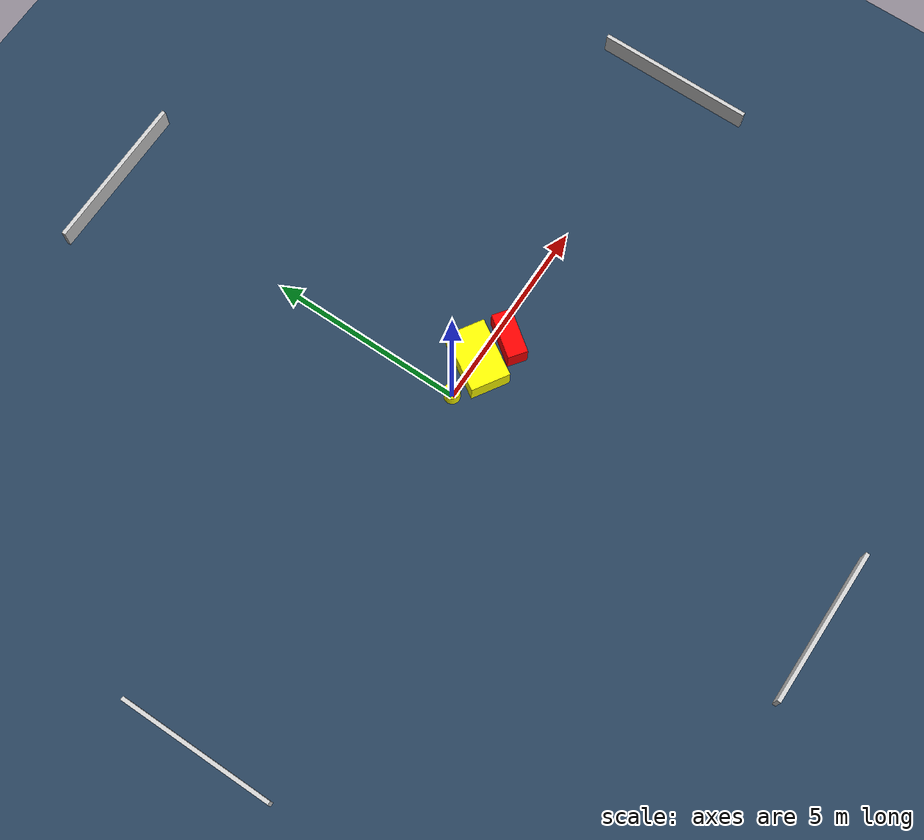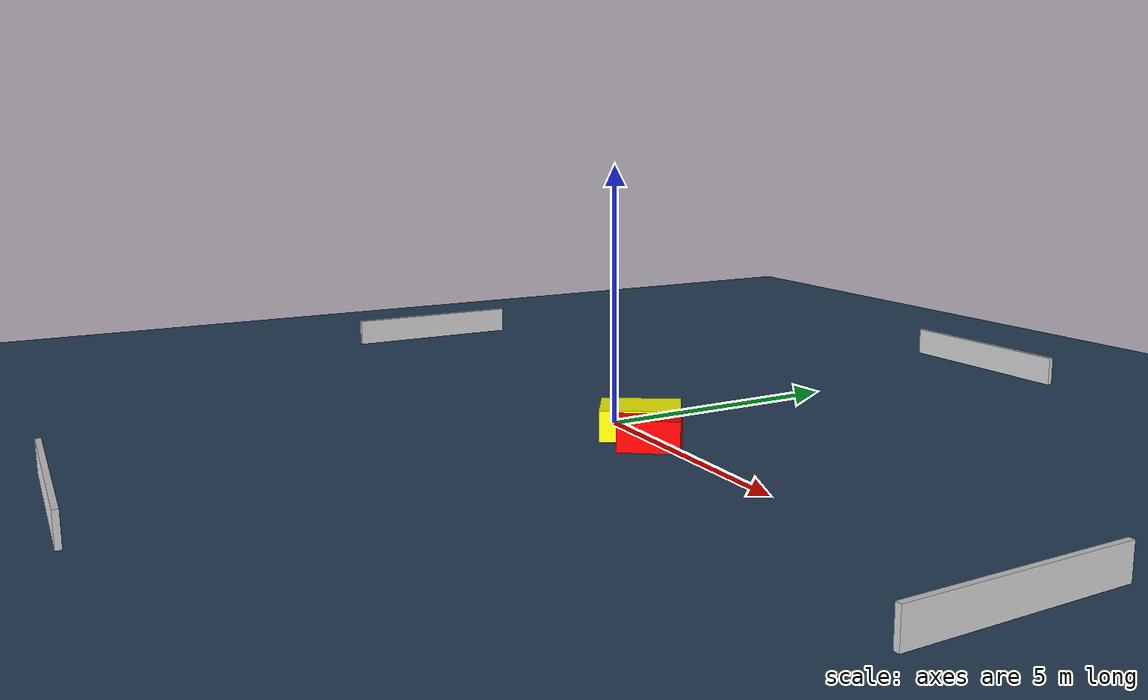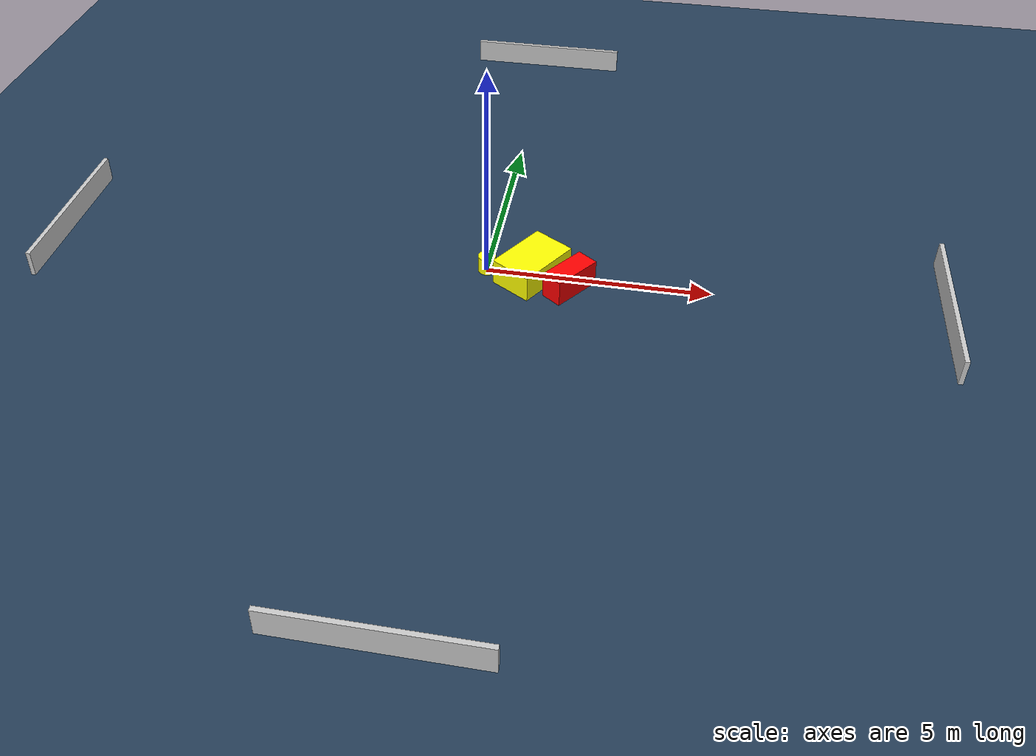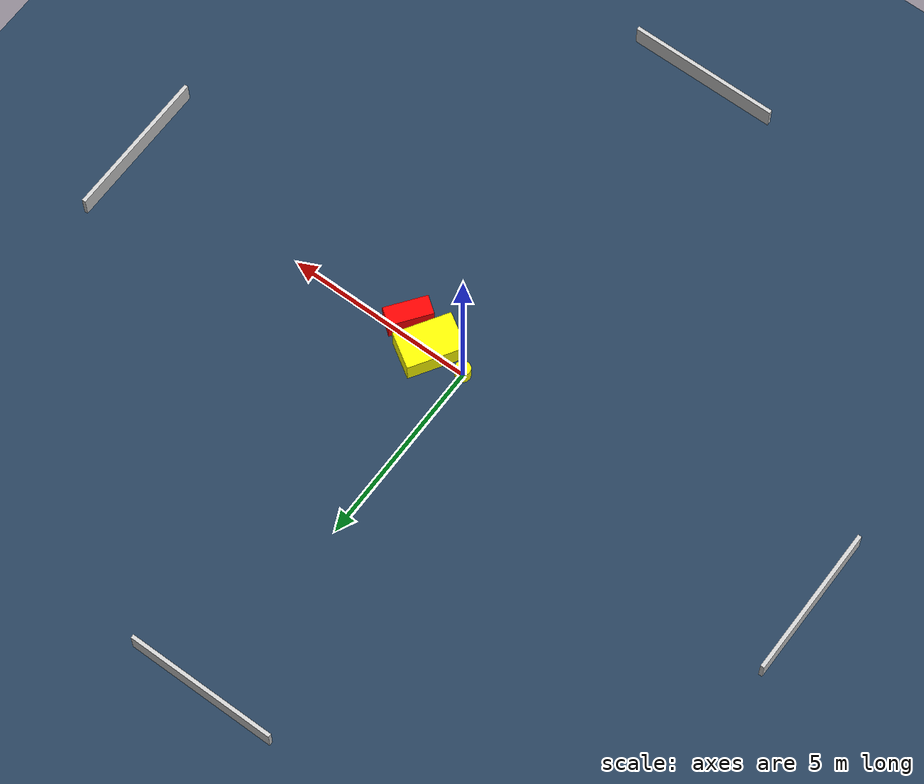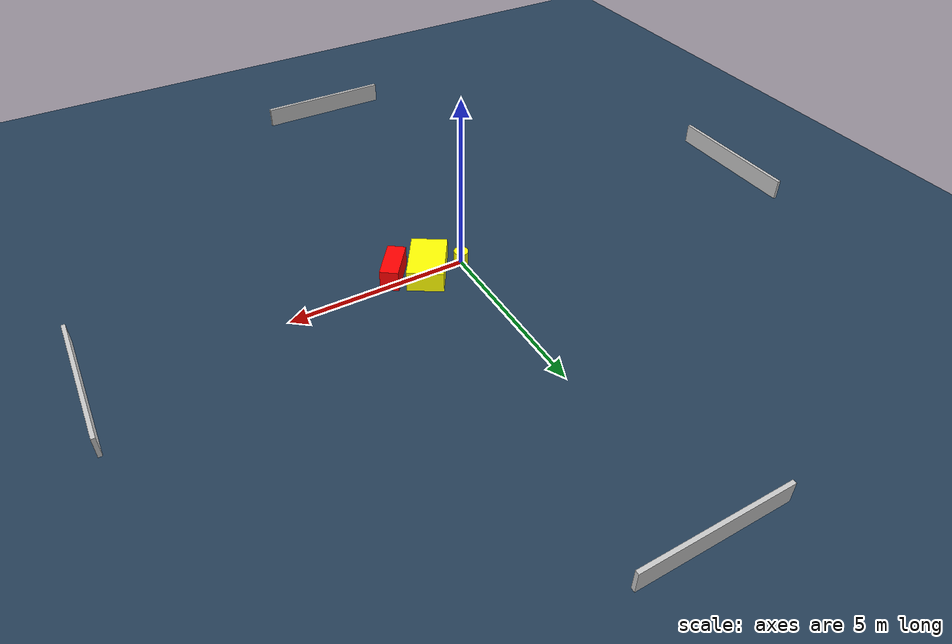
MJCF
<?xml version="1.0" ?>
<mujoco model="generated_environment">
  <option timestep="0.01" integrator="RK4" cone="elliptic"/>
  <default>
    <geom density="1"/>
  </default>
  <asset>
    <texture builtin="gradient" height="3072" name="skybox" rgb1="0.3 0.5 0.7" rgb2="0 0 0" type="skybox" width="512"/>
    <texture builtin="checker" height="300" name="groundplane" rgb1="0.2 0.3 0.4" rgb2="0.1 0.2 0.3" type="2d" width="300"/>
    <material name="groundplane" reflectance="0.2" texrepeat="5 5" texture="groundplane"/>
  </asset>
  <worldbody>
    <light dir="0 0 -1" directional="true" pos="0 0 1.5"/>
    <geom condim="3" friction="0.5 0.005 0.001" material="groundplane" name="floor" pos="0 0 0" size="0 0 0.05" type="plane"/>
    <body name="walls">
      <geom name="wall_1" condim="4" pos="-10.0 0.0 0.3" rgba="0.800000011920929 0.800000011920929 0.800000011920929 1.0" size="0.05 2.0 0.3" type="box"/>
      <geom name="wall_2" condim="4" pos="10.0 0.0 0.3" rgba="0.800000011920929 0.800000011920929 0.800000011920929 1.0" size="0.05 2.0 0.3" type="box"/>
      <geom name="wall_3" condim="4" pos="0.0 -10.0 0.3" rgba="0.800000011920929 0.800000011920929 0.800000011920929 1.0" size="2.0 0.05 0.3" type="box"/>
      <geom name="wall_4" condim="4" pos="0.0 10.0 0.3" rgba="0.800000011920929 0.800000011920929 0.800000011920929 1.0" size="2.0 0.05 0.3" type="box"/>
    </body>
    <body name="robot">
      <joint name="joint_x" type="slide" pos="0 0 0" axis="1 0 0"/>
      <joint name="joint_y" type="slide" pos="0 0 0" axis="0 1 0"/>
      <geom name="robot" type="cylinder" pos="0.0 0.0 0.2" size="0.2 0.2 0.0" mass="5.0" friction="1.0 0.005 0.0001" condim="4" rgba="1.0 1.0 0.0 1.0"/>
    </body>
    <body name="obstacle_1_movable">
      <geom name="obstacle_1_movable" condim="4" pos="1.0264917724441471 -0.03491945351957442 0.3" euler="0 0 327.8725042667434" friction="0.0 0.005 0.001" rgba="1.0 1.0 0.0 1.0" size="0.4991169001048776 0.7566901090953144 0.3" type="box" mass="0.1"/>
      <joint type="free"/>
    </body>
    <body name="obstacle_2_static">
      <geom name="obstacle_2_static" condim="4" pos="1.8990648432855577 -0.36107794807668836 0.3" euler="0 0 323.38251429118594" friction="0.0 0.005 0.001" rgba="1.0 0.0 0.0 1.0" size="0.25351470769755285 0.5767376565638228 0.3" type="box"/>
    </body>
  </worldbody>
  <actuator>
    <motor name="actuator_x" joint="joint_x" gear="1" ctrlrange="-1 1"/>
    <motor name="actuator_y" joint="joint_y" gear="1" ctrlrange="-1 1"/>
  </actuator>
</mujoco>
